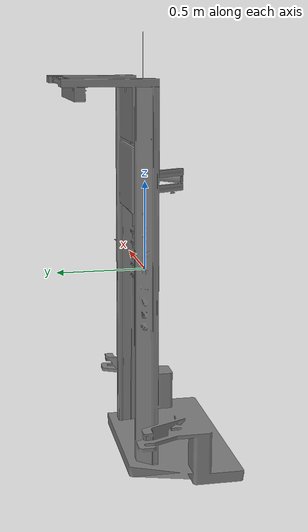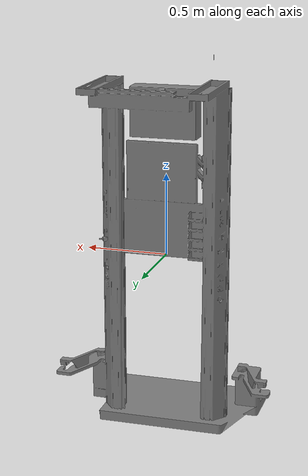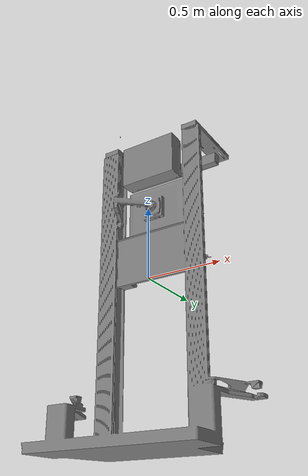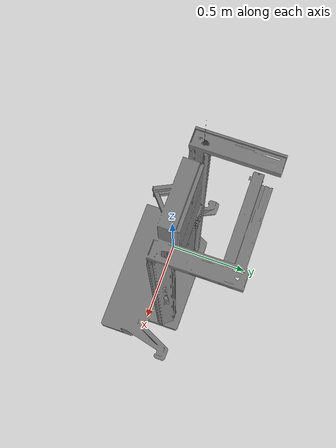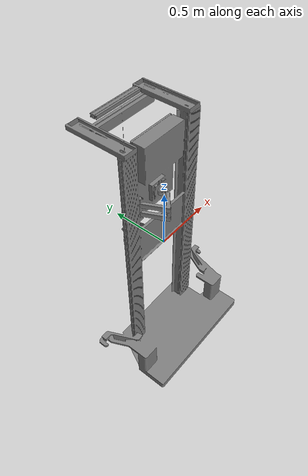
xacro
<?xml version="1.0"?>
<robot name="working_pillar" xmlns:xacro="http://ros.org/wiki/xacro">

  <!-- working_pillar main -->
  <link name="working_pillar">
    <visual>
      <geometry>
        <mesh filename="file:///objects/working_pillar/meshes/working_pillar.stl">
          <scale>1 1 1</scale>
        </mesh>
      </geometry>
      <material name="grey">
        <color rgba="0.5 0.5 0.5 1.0"/>
      </material>
    </visual>
  </link>

  <!-- working_pillar base -->
  <link name="working_pillar_base">
  </link>

  <joint name="working_pillar_to_working_pillar_base" type="fixed">
    <origin xyz="0.0 0.0 -1.07" rpy="0 0 0"/>
    <parent link="working_pillar"/>
    <child link="working_pillar_base" />
  </joint>

  <!-- working_pillar approach pose  -->
  <link name="working_pillar_approach">
      </link>

  <joint name="base_to_approach" type="fixed">
    <origin xyz="0.0 1.0 0.0" rpy="0 0 0"/>
    <parent link="working_pillar_base"/>
    <child link="working_pillar_approach" />
  </joint>

  <!-- working_pillar center of 3D bounding box -->
  <link name="working_pillar_center_bb">
    </link>

  <joint name="base_plate_to_center_bb" type="fixed">
    <origin xyz="0.0 0.0 0.0" rpy="0 0 0"/>
    <parent link="working_pillar"/>
    <child link="working_pillar_center_bb" />
  </joint>

</robot>
